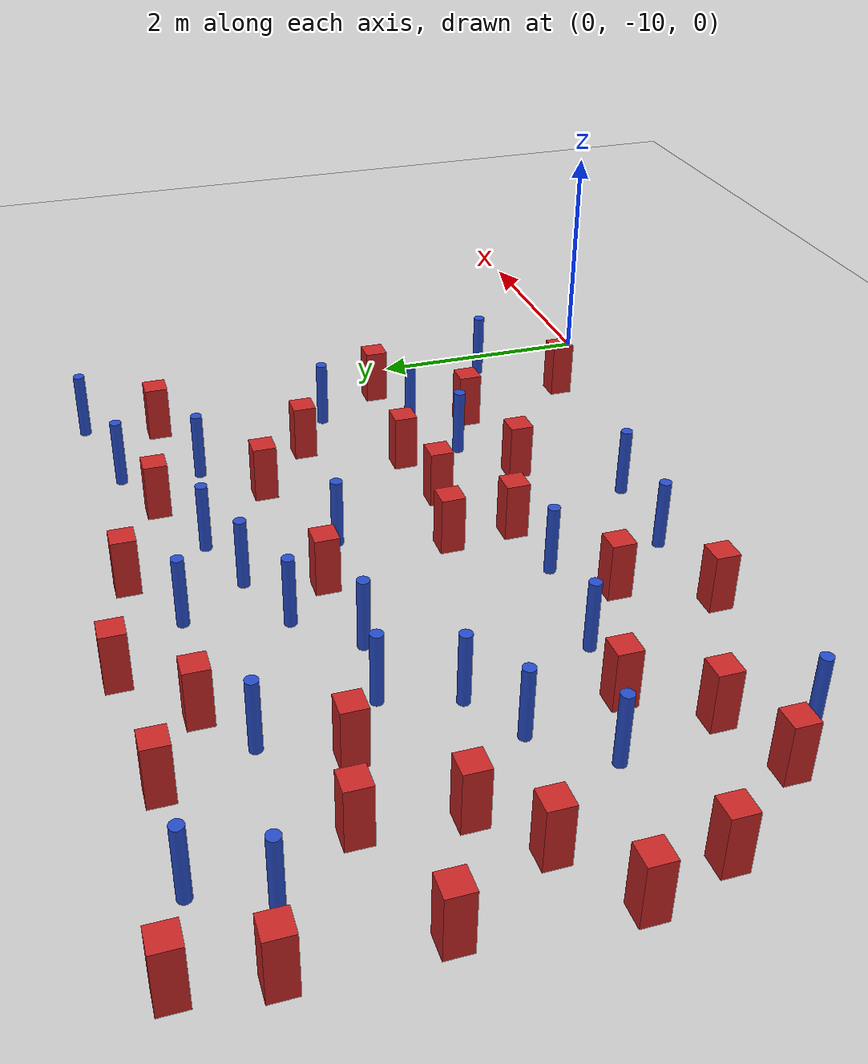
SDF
<sdf version="1.6">
 <world name="default">
  <model name="ground_plane">
   <static>1</static>
   <link name="link">
    <collision name="collision">
     <geometry><plane><normal>0 0 1</normal><size>100 100</size></plane></geometry>
     <surface><friction><ode><mu>100</mu><mu2>50</mu2></ode></friction></surface>
    </collision>
    <visual name="visual">
     <cast_shadows>0</cast_shadows>
     <geometry><plane><normal>0 0 1</normal><size>100 100</size></plane></geometry>
     <material>
      <ambient>1.0 1.0 1.0 1.0</ambient>
      <diffuse>0.8 0.8 0.8 1.0</diffuse>
      <specular>0.01 0.01 0.01 1.000000</specular>
     </material>
    </visual>
   </link>
  </model>
  <model name="square_post_obstacle3">
   <static>true</static>
   <pose>-0.493345622477 -7.72560742261 8.22691968438e-08 7.22125133819e-06 -7.54495500217e-07 2.29674213826e-05</pose>
   <link name="link">
    <pose>0 0 0.25 0 -0 0</pose>
    <inertial>
     <mass>100</mass>
     <inertia>
      <ixx>0.166667</ixx>
      <ixy>0</ixy>
      <ixz>0</ixz>
      <iyy>0.166667</iyy>
      <iyz>0</iyz>
      <izz>0.166667</izz>
     </inertia>
    </inertial>
    <collision name="collision"><geometry><box><size>.2 .2 .5</size></box></geometry></collision>
    <visual name="visual">
     <geometry><box><size>.2 .2 .5</size></box></geometry>
     <material>
      <script><name>Gazebo/Red</name><uri>file://media/materials/scripts/gazebo.material</uri></script>
     </material>
    </visual>
   </link>
  </model>
  <model name="square_post_obstacle17">
   <static>true</static>
   <pose>-6.70024138544 -4.7773195989 8.22691968438e-08 7.22125133819e-06 -7.54495500217e-07 2.29674213826e-05</pose>
   <link name="link">
    <pose>0 0 0.25 0 -0 0</pose>
    <inertial>
     <mass>100</mass>
     <inertia>
      <ixx>0.166667</ixx>
      <ixy>0</ixy>
      <ixz>0</ixz>
      <iyy>0.166667</iyy>
      <iyz>0</iyz>
      <izz>0.166667</izz>
     </inertia>
    </inertial>
    <collision name="collision"><geometry><box><size>.2 .2 .5</size></box></geometry></collision>
    <visual name="visual">
     <geometry><box><size>.2 .2 .5</size></box></geometry>
     <material>
      <script><name>Gazebo/Red</name><uri>file://media/materials/scripts/gazebo.material</uri></script>
     </material>
    </visual>
   </link>
  </model>
  <model name="pole_obstacle24">
   <static>true</static>
   <pose>-4.15992003659 -6.58074387573 2.88873142074e-08 -9.90536690842e-09 4.60219948965e-07 -1.20965994976e-07</pose>
   <link name="link">
    <pose>0 0 0.3 0 -0 0</pose>
    <inertial>
     <mass>1</mass>
     <inertia><ixx>0.145833</ixx><ixy>0</ixy><ixz>0</ixz><iyy>0.145833</iyy><iyz>0</iyz><izz>0.125</izz></inertia>
    </inertial>
    <collision name="collision">
     <geometry><cylinder><radius>0.05</radius><length>.6</length></cylinder></geometry>
    </collision>
    <visual name="visual">
     <geometry><cylinder><radius>0.05</radius><length>.6</length></cylinder></geometry>
     <material>
      <script><name>Gazebo/Blue</name><uri>file://media/materials/scripts/gazebo.material</uri></script>
     </material>
    </visual>
   </link>
  </model>
  <model name="square_post_obstacle27">
   <static>true</static>
   <pose>-2.95584262746 -5.01635917533 8.22691968438e-08 7.2212513382e-06 -7.54495500217e-07 2.29674213826e-05</pose>
   <link name="link">
    <pose>0 0 0.25 0 -0 0</pose>
    <inertial>
     <mass>100</mass>
     <inertia>
      <ixx>0.166667</ixx>
      <ixy>0</ixy>
      <ixz>0</ixz>
      <iyy>0.166667</iyy>
      <iyz>0</iyz>
      <izz>0.166667</izz>
     </inertia>
    </inertial>
    <collision name="collision"><geometry><box><size>.2 .2 .5</size></box></geometry></collision>
    <visual name="visual">
     <geometry><box><size>.2 .2 .5</size></box></geometry>
     <material>
      <script><name>Gazebo/Red</name><uri>file://media/materials/scripts/gazebo.material</uri></script>
     </material>
    </visual>
   </link>
  </model>
  <model name="pole_obstacle46">
   <static>true</static>
   <pose>-3.51646716942 -5.35829615018 2.88873142074e-08 -9.90536689859e-09 4.60219948989e-07 -1.20965994961e-07</pose>
   <link name="link">
    <pose>0 0 0.3 0 -0 0</pose>
    <inertial>
     <mass>1</mass>
     <inertia><ixx>0.145833</ixx><ixy>0</ixy><ixz>0</ixz><iyy>0.145833</iyy><iyz>0</iyz><izz>0.125</izz></inertia>
    </inertial>
    <collision name="collision">
     <geometry><cylinder><radius>0.05</radius><length>.6</length></cylinder></geometry>
    </collision>
    <visual name="visual">
     <geometry><cylinder><radius>0.05</radius><length>.6</length></cylinder></geometry>
     <material>
      <script><name>Gazebo/Blue</name><uri>file://media/materials/scripts/gazebo.material</uri></script>
     </material>
    </visual>
   </link>
  </model>
  <model name="pole_obstacle49">
   <static>true</static>
   <pose>-0.845034352433 -7.11770903729 2.88873142074e-08 -9.90536689661e-09 4.60219948993e-07 -1.20965994957e-07</pose>
   <link name="link">
    <pose>0 0 0.3 0 -0 0</pose>
    <inertial>
     <mass>1</mass>
     <inertia><ixx>0.145833</ixx><ixy>0</ixy><ixz>0</ixz><iyy>0.145833</iyy><iyz>0</iyz><izz>0.125</izz></inertia>
    </inertial>
    <collision name="collision">
     <geometry><cylinder><radius>0.05</radius><length>.6</length></cylinder></geometry>
    </collision>
    <visual name="visual">
     <geometry><cylinder><radius>0.05</radius><length>.6</length></cylinder></geometry>
     <material>
      <script><name>Gazebo/Blue</name><uri>file://media/materials/scripts/gazebo.material</uri></script>
     </material>
    </visual>
   </link>
  </model>
  <model name="pole_obstacle53">
   <static>true</static>
   <pose>-6.28925711133 -5.46033291262 2.88873142074e-08 -9.90536690842e-09 4.60219948965e-07 -1.20965994976e-07</pose>
   <link name="link">
    <pose>0 0 0.3 0 -0 0</pose>
    <inertial>
     <mass>1</mass>
     <inertia><ixx>0.145833</ixx><ixy>0</ixy><ixz>0</ixz><iyy>0.145833</iyy><iyz>0</iyz><izz>0.125</izz></inertia>
    </inertial>
    <collision name="collision">
     <geometry><cylinder><radius>0.05</radius><length>.6</length></cylinder></geometry>
    </collision>
    <visual name="visual">
     <geometry><cylinder><radius>0.05</radius><length>.6</length></cylinder></geometry>
     <material>
      <script><name>Gazebo/Blue</name><uri>file://media/materials/scripts/gazebo.material</uri></script>
     </material>
    </visual>
   </link>
  </model>
  <model name="square_post_obstacle42">
   <static>true</static>
   <pose>-5.97188376322 -6.75187943986 8.22691968438e-08 7.22125133819e-06 -7.54495500217e-07 2.29674213826e-05</pose>
   <link name="link">
    <pose>0 0 0.25 0 -0 0</pose>
    <inertial>
     <mass>100</mass>
     <inertia>
      <ixx>0.166667</ixx>
      <ixy>0</ixy>
      <ixz>0</ixz>
      <iyy>0.166667</iyy>
      <iyz>0</iyz>
      <izz>0.166667</izz>
     </inertia>
    </inertial>
    <collision name="collision"><geometry><box><size>.2 .2 .5</size></box></geometry></collision>
    <visual name="visual">
     <geometry><box><size>.2 .2 .5</size></box></geometry>
     <material>
      <script><name>Gazebo/Red</name><uri>file://media/materials/scripts/gazebo.material</uri></script>
     </material>
    </visual>
   </link>
  </model>
  <model name="square_post_obstacle47">
   <static>true</static>
   <pose>-2.2233526803 -8.53265162642 8.22691968438e-08 7.22125133819e-06 -7.54495500217e-07 2.29674213826e-05</pose>
   <link name="link">
    <pose>0 0 0.25 0 -0 0</pose>
    <inertial>
     <mass>100</mass>
     <inertia>
      <ixx>0.166667</ixx>
      <ixy>0</ixy>
      <ixz>0</ixz>
      <iyy>0.166667</iyy>
      <iyz>0</iyz>
      <izz>0.166667</izz>
     </inertia>
    </inertial>
    <collision name="collision"><geometry><box><size>.2 .2 .5</size></box></geometry></collision>
    <visual name="visual">
     <geometry><box><size>.2 .2 .5</size></box></geometry>
     <material>
      <script><name>Gazebo/Red</name><uri>file://media/materials/scripts/gazebo.material</uri></script>
     </material>
    </visual>
   </link>
  </model>
  <model name="pole_obstacle66">
   <static>true</static>
   <pose>-4.97730518468 -5.60602980783 2.88873142074e-08 -9.90536690842e-09 4.60219948965e-07 -1.20965994976e-07</pose>
   <link name="link">
    <pose>0 0 0.3 0 -0 0</pose>
    <inertial>
     <mass>1</mass>
     <inertia><ixx>0.145833</ixx><ixy>0</ixy><ixz>0</ixz><iyy>0.145833</iyy><iyz>0</iyz><izz>0.125</izz></inertia>
    </inertial>
    <collision name="collision">
     <geometry><cylinder><radius>0.05</radius><length>.6</length></cylinder></geometry>
    </collision>
    <visual name="visual">
     <geometry><cylinder><radius>0.05</radius><length>.6</length></cylinder></geometry>
     <material>
      <script><name>Gazebo/Blue</name><uri>file://media/materials/scripts/gazebo.material</uri></script>
     </material>
    </visual>
   </link>
  </model>
  <model name="pole_obstacle68">
   <static>true</static>
   <pose>-5.79321202497 -7.85407905585 2.88873142074e-08 -9.90536690842e-09 4.60219948965e-07 -1.20965994976e-07</pose>
   <link name="link">
    <pose>0 0 0.3 0 -0 0</pose>
    <inertial>
     <mass>1</mass>
     <inertia><ixx>0.145833</ixx><ixy>0</ixy><ixz>0</ixz><iyy>0.145833</iyy><iyz>0</iyz><izz>0.125</izz></inertia>
    </inertial>
    <collision name="collision">
     <geometry><cylinder><radius>0.05</radius><length>.6</length></cylinder></geometry>
    </collision>
    <visual name="visual">
     <geometry><cylinder><radius>0.05</radius><length>.6</length></cylinder></geometry>
     <material>
      <script><name>Gazebo/Blue</name><uri>file://media/materials/scripts/gazebo.material</uri></script>
     </material>
    </visual>
   </link>
  </model>
  <model name="pole_obstacle75">
   <static>true</static>
   <pose>-3.61009110257 -9.23267757967 2.88873142074e-08 -9.9053668994e-09 4.60219948987e-07 -1.20965994963e-07</pose>
   <link name="link">
    <pose>0 0 0.3 0 -0 0</pose>
    <inertial>
     <mass>1</mass>
     <inertia><ixx>0.145833</ixx><ixy>0</ixy><ixz>0</ixz><iyy>0.145833</iyy><iyz>0</iyz><izz>0.125</izz></inertia>
    </inertial>
    <collision name="collision">
     <geometry><cylinder><radius>0.05</radius><length>.6</length></cylinder></geometry>
    </collision>
    <visual name="visual">
     <geometry><cylinder><radius>0.05</radius><length>.6</length></cylinder></geometry>
     <material>
      <script><name>Gazebo/Blue</name><uri>file://media/materials/scripts/gazebo.material</uri></script>
     </material>
    </visual>
   </link>
  </model>
  <model name="pole_obstacle76">
   <static>true</static>
   <pose>-1.37994424659 -5.16311437465 2.88873142074e-08 -9.90536689852e-09 4.60219948989e-07 -1.2096599496e-07</pose>
   <link name="link">
    <pose>0 0 0.3 0 -0 0</pose>
    <inertial>
     <mass>1</mass>
     <inertia><ixx>0.145833</ixx><ixy>0</ixy><ixz>0</ixz><iyy>0.145833</iyy><iyz>0</iyz><izz>0.125</izz></inertia>
    </inertial>
    <collision name="collision">
     <geometry><cylinder><radius>0.05</radius><length>.6</length></cylinder></geometry>
    </collision>
    <visual name="visual">
     <geometry><cylinder><radius>0.05</radius><length>.6</length></cylinder></geometry>
     <material>
      <script><name>Gazebo/Blue</name><uri>file://media/materials/scripts/gazebo.material</uri></script>
     </material>
    </visual>
   </link>
  </model>
  <model name="square_post_obstacle67">
   <static>true</static>
   <pose>-6.38916918772 -7.11746175121 8.22691968438e-08 7.2212513382e-06 -7.54495500217e-07 2.29674213826e-05</pose>
   <link name="link">
    <pose>0 0 0.25 0 -0 0</pose>
    <inertial>
     <mass>100</mass>
     <inertia>
      <ixx>0.166667</ixx>
      <ixy>0</ixy>
      <ixz>0</ixz>
      <iyy>0.166667</iyy>
      <iyz>0</iyz>
      <izz>0.166667</izz>
     </inertia>
    </inertial>
    <collision name="collision"><geometry><box><size>.2 .2 .5</size></box></geometry></collision>
    <visual name="visual">
     <geometry><box><size>.2 .2 .5</size></box></geometry>
     <material>
      <script><name>Gazebo/Red</name><uri>file://media/materials/scripts/gazebo.material</uri></script>
     </material>
    </visual>
   </link>
  </model>
  <model name="pole_obstacle83">
   <static>true</static>
   <pose>-2.59215975054 -5.6934091363 2.88873142074e-08 -9.90536689859e-09 4.60219948989e-07 -1.20965994961e-07</pose>
   <link name="link">
    <pose>0 0 0.3 0 -0 0</pose>
    <inertial>
     <mass>1</mass>
     <inertia><ixx>0.145833</ixx><ixy>0</ixy><ixz>0</ixz><iyy>0.145833</iyy><iyz>0</iyz><izz>0.125</izz></inertia>
    </inertial>
    <collision name="collision">
     <geometry><cylinder><radius>0.05</radius><length>.6</length></cylinder></geometry>
    </collision>
    <visual name="visual">
     <geometry><cylinder><radius>0.05</radius><length>.6</length></cylinder></geometry>
     <material>
      <script><name>Gazebo/Blue</name><uri>file://media/materials/scripts/gazebo.material</uri></script>
     </material>
    </visual>
   </link>
  </model>
  <model name="pole_obstacle84">
   <static>true</static>
   <pose>-1.72093641902 -8.16516331236 2.88873142074e-08 -9.90536690474e-09 4.60219948974e-07 -1.2096599497e-07</pose>
   <link name="link">
    <pose>0 0 0.3 0 -0 0</pose>
    <inertial>
     <mass>1</mass>
     <inertia><ixx>0.145833</ixx><ixy>0</ixy><ixz>0</ixz><iyy>0.145833</iyy><iyz>0</iyz><izz>0.125</izz></inertia>
    </inertial>
    <collision name="collision">
     <geometry><cylinder><radius>0.05</radius><length>.6</length></cylinder></geometry>
    </collision>
    <visual name="visual">
     <geometry><cylinder><radius>0.05</radius><length>.6</length></cylinder></geometry>
     <material>
      <script><name>Gazebo/Blue</name><uri>file://media/materials/scripts/gazebo.material</uri></script>
     </material>
    </visual>
   </link>
  </model>
  <model name="square_post_obstacle76">
   <static>true</static>
   <pose>-6.80618920076 -6.35029914119 8.22691968438e-08 7.22125133819e-06 -7.54495500217e-07 2.29674213826e-05</pose>
   <link name="link">
    <pose>0 0 0.25 0 -0 0</pose>
    <inertial>
     <mass>100</mass>
     <inertia>
      <ixx>0.166667</ixx>
      <ixy>0</ixy>
      <ixz>0</ixz>
      <iyy>0.166667</iyy>
      <iyz>0</iyz>
      <izz>0.166667</izz>
     </inertia>
    </inertial>
    <collision name="collision"><geometry><box><size>.2 .2 .5</size></box></geometry></collision>
    <visual name="visual">
     <geometry><box><size>.2 .2 .5</size></box></geometry>
     <material>
      <script><name>Gazebo/Red</name><uri>file://media/materials/scripts/gazebo.material</uri></script>
     </material>
    </visual>
   </link>
  </model>
  <model name="square_post_obstacle80">
   <static>true</static>
   <pose>-5.89989526229 -6.0331485318 8.22691968438e-08 7.22125133819e-06 -7.54495500217e-07 2.29674213826e-05</pose>
   <link name="link">
    <pose>0 0 0.25 0 -0 0</pose>
    <inertial>
     <mass>100</mass>
     <inertia>
      <ixx>0.166667</ixx>
      <ixy>0</ixy>
      <ixz>0</ixz>
      <iyy>0.166667</iyy>
      <iyz>0</iyz>
      <izz>0.166667</izz>
     </inertia>
    </inertial>
    <collision name="collision"><geometry><box><size>.2 .2 .5</size></box></geometry></collision>
    <visual name="visual">
     <geometry><box><size>.2 .2 .5</size></box></geometry>
     <material>
      <script><name>Gazebo/Red</name><uri>file://media/materials/scripts/gazebo.material</uri></script>
     </material>
    </visual>
   </link>
  </model>
  <model name="square_post_obstacle82">
   <static>true</static>
   <pose>-1.3494134234 -6.80995264339 8.22691968438e-08 7.2212513382e-06 -7.54495500217e-07 2.29674213826e-05</pose>
   <link name="link">
    <pose>0 0 0.25 0 -0 0</pose>
    <inertial>
     <mass>100</mass>
     <inertia>
      <ixx>0.166667</ixx>
      <ixy>0</ixy>
      <ixz>0</ixz>
      <iyy>0.166667</iyy>
      <iyz>0</iyz>
      <izz>0.166667</izz>
     </inertia>
    </inertial>
    <collision name="collision"><geometry><box><size>.2 .2 .5</size></box></geometry></collision>
    <visual name="visual">
     <geometry><box><size>.2 .2 .5</size></box></geometry>
     <material>
      <script><name>Gazebo/Red</name><uri>file://media/materials/scripts/gazebo.material</uri></script>
     </material>
    </visual>
   </link>
  </model>
  <model name="square_post_obstacle83">
   <static>true</static>
   <pose>-6.74747124353 -8.10673178946 8.22691968438e-08 7.22125133819e-06 -7.54495500217e-07 2.29674213826e-05</pose>
   <link name="link">
    <pose>0 0 0.25 0 -0 0</pose>
    <inertial>
     <mass>100</mass>
     <inertia>
      <ixx>0.166667</ixx>
      <ixy>0</ixy>
      <ixz>0</ixz>
      <iyy>0.166667</iyy>
      <iyz>0</iyz>
      <izz>0.166667</izz>
     </inertia>
    </inertial>
    <collision name="collision"><geometry><box><size>.2 .2 .5</size></box></geometry></collision>
    <visual name="visual">
     <geometry><box><size>.2 .2 .5</size></box></geometry>
     <material>
      <script><name>Gazebo/Red</name><uri>file://media/materials/scripts/gazebo.material</uri></script>
     </material>
    </visual>
   </link>
  </model>
  <model name="pole_obstacle93">
   <static>true</static>
   <pose>-1.46219772768 -5.84406266683 2.88873142074e-08 -9.90536689852e-09 4.60219948989e-07 -1.2096599496e-07</pose>
   <link name="link">
    <pose>0 0 0.3 0 -0 0</pose>
    <inertial>
     <mass>1</mass>
     <inertia><ixx>0.145833</ixx><ixy>0</ixy><ixz>0</ixz><iyy>0.145833</iyy><iyz>0</iyz><izz>0.125</izz></inertia>
    </inertial>
    <collision name="collision">
     <geometry><cylinder><radius>0.05</radius><length>.6</length></cylinder></geometry>
    </collision>
    <visual name="visual">
     <geometry><cylinder><radius>0.05</radius><length>.6</length></cylinder></geometry>
     <material>
      <script><name>Gazebo/Blue</name><uri>file://media/materials/scripts/gazebo.material</uri></script>
     </material>
    </visual>
   </link>
  </model>
  <model name="pole_obstacle94">
   <static>true</static>
   <pose>-3.16514771165 -5.88949380818 2.88873142074e-08 -9.90536689859e-09 4.60219948989e-07 -1.20965994961e-07</pose>
   <link name="link">
    <pose>0 0 0.3 0 -0 0</pose>
    <inertial>
     <mass>1</mass>
     <inertia><ixx>0.145833</ixx><ixy>0</ixy><ixz>0</ixz><iyy>0.145833</iyy><iyz>0</iyz><izz>0.125</izz></inertia>
    </inertial>
    <collision name="collision">
     <geometry><cylinder><radius>0.05</radius><length>.6</length></cylinder></geometry>
    </collision>
    <visual name="visual">
     <geometry><cylinder><radius>0.05</radius><length>.6</length></cylinder></geometry>
     <material>
      <script><name>Gazebo/Blue</name><uri>file://media/materials/scripts/gazebo.material</uri></script>
     </material>
    </visual>
   </link>
  </model>
  <model name="square_post_obstacle97">
   <static>true</static>
   <pose>-1.77646345106 -7.62012668404 8.22691968438e-08 7.2212513382e-06 -7.54495500217e-07 2.29674213826e-05</pose>
   <link name="link">
    <pose>0 0 0.25 0 -0 0</pose>
    <inertial>
     <mass>100</mass>
     <inertia>
      <ixx>0.166667</ixx>
      <ixy>0</ixy>
      <ixz>0</ixz>
      <iyy>0.166667</iyy>
      <iyz>0</iyz>
      <izz>0.166667</izz>
     </inertia>
    </inertial>
    <collision name="collision"><geometry><box><size>.2 .2 .5</size></box></geometry></collision>
    <visual name="visual">
     <geometry><box><size>.2 .2 .5</size></box></geometry>
     <material>
      <script><name>Gazebo/Red</name><uri>file://media/materials/scripts/gazebo.material</uri></script>
     </material>
    </visual>
   </link>
  </model>
  <model name="square_post_obstacle99">
   <static>true</static>
   <pose>-3.12521516252 -7.59323868157 8.22691968438e-08 7.2212513382e-06 -7.54495500217e-07 2.29674213826e-05</pose>
   <link name="link">
    <pose>0 0 0.25 0 -0 0</pose>
    <inertial>
     <mass>100</mass>
     <inertia>
      <ixx>0.166667</ixx>
      <ixy>0</ixy>
      <ixz>0</ixz>
      <iyy>0.166667</iyy>
      <iyz>0</iyz>
      <izz>0.166667</izz>
     </inertia>
    </inertial>
    <collision name="collision"><geometry><box><size>.2 .2 .5</size></box></geometry></collision>
    <visual name="visual">
     <geometry><box><size>.2 .2 .5</size></box></geometry>
     <material>
      <script><name>Gazebo/Red</name><uri>file://media/materials/scripts/gazebo.material</uri></script>
     </material>
    </visual>
   </link>
  </model>
  <model name="square_post_obstacle105">
   <static>true</static>
   <pose>-1.92635302986 -6.32361667722 8.22691968438e-08 7.2212513382e-06 -7.54495500217e-07 2.29674213826e-05</pose>
   <link name="link">
    <pose>0 0 0.25 0 -0 0</pose>
    <inertial>
     <mass>100</mass>
     <inertia>
      <ixx>0.166667</ixx>
      <ixy>0</ixy>
      <ixz>0</ixz>
      <iyy>0.166667</iyy>
      <iyz>0</iyz>
      <izz>0.166667</izz>
     </inertia>
    </inertial>
    <collision name="collision"><geometry><box><size>.2 .2 .5</size></box></geometry></collision>
    <visual name="visual">
     <geometry><box><size>.2 .2 .5</size></box></geometry>
     <material>
      <script><name>Gazebo/Red</name><uri>file://media/materials/scripts/gazebo.material</uri></script>
     </material>
    </visual>
   </link>
  </model>
  <model name="square_post_obstacle109">
   <static>true</static>
   <pose>-6.92689783256 -7.4891029306 8.22691968438e-08 7.2212513382e-06 -7.54495500217e-07 2.29674213826e-05</pose>
   <link name="link">
    <pose>0 0 0.25 0 -0 0</pose>
    <inertial>
     <mass>100</mass>
     <inertia>
      <ixx>0.166667</ixx>
      <ixy>0</ixy>
      <ixz>0</ixz>
      <iyy>0.166667</iyy>
      <iyz>0</iyz>
      <izz>0.166667</izz>
     </inertia>
    </inertial>
    <collision name="collision"><geometry><box><size>.2 .2 .5</size></box></geometry></collision>
    <visual name="visual">
     <geometry><box><size>.2 .2 .5</size></box></geometry>
     <material>
      <script><name>Gazebo/Red</name><uri>file://media/materials/scripts/gazebo.material</uri></script>
     </material>
    </visual>
   </link>
  </model>
  <model name="square_post_obstacle110">
   <static>true</static>
   <pose>-0.615982910293 -5.59972403722 8.22691968438e-08 7.22125133819e-06 -7.54495500217e-07 2.29674213826e-05</pose>
   <link name="link">
    <pose>0 0 0.25 0 -0 0</pose>
    <inertial>
     <mass>100</mass>
     <inertia>
      <ixx>0.166667</ixx>
      <ixy>0</ixy>
      <ixz>0</ixz>
      <iyy>0.166667</iyy>
      <iyz>0</iyz>
      <izz>0.166667</izz>
     </inertia>
    </inertial>
    <collision name="collision"><geometry><box><size>.2 .2 .5</size></box></geometry></collision>
    <visual name="visual">
     <geometry><box><size>.2 .2 .5</size></box></geometry>
     <material>
      <script><name>Gazebo/Red</name><uri>file://media/materials/scripts/gazebo.material</uri></script>
     </material>
    </visual>
   </link>
  </model>
  <model name="square_post_obstacle114">
   <static>true</static>
   <pose>-3.08795373628 -8.15774296068 8.22691968438e-08 7.22125133819e-06 -7.54495500217e-07 2.29674213826e-05</pose>
   <link name="link">
    <pose>0 0 0.25 0 -0 0</pose>
    <inertial>
     <mass>100</mass>
     <inertia>
      <ixx>0.166667</ixx>
      <ixy>0</ixy>
      <ixz>0</ixz>
      <iyy>0.166667</iyy>
      <iyz>0</iyz>
      <izz>0.166667</izz>
     </inertia>
    </inertial>
    <collision name="collision"><geometry><box><size>.2 .2 .5</size></box></geometry></collision>
    <visual name="visual">
     <geometry><box><size>.2 .2 .5</size></box></geometry>
     <material>
      <script><name>Gazebo/Red</name><uri>file://media/materials/scripts/gazebo.material</uri></script>
     </material>
    </visual>
   </link>
  </model>
  <model name="pole_obstacle117">
   <static>true</static>
   <pose>-2.83641801413 -6.73298251179 2.88873142074e-08 -9.90536689859e-09 4.60219948989e-07 -1.20965994961e-07</pose>
   <link name="link">
    <pose>0 0 0.3 0 -0 0</pose>
    <inertial>
     <mass>1</mass>
     <inertia><ixx>0.145833</ixx><ixy>0</ixy><ixz>0</ixz><iyy>0.145833</iyy><iyz>0</iyz><izz>0.125</izz></inertia>
    </inertial>
    <collision name="collision">
     <geometry><cylinder><radius>0.05</radius><length>.6</length></cylinder></geometry>
    </collision>
    <visual name="visual">
     <geometry><cylinder><radius>0.05</radius><length>.6</length></cylinder></geometry>
     <material>
      <script><name>Gazebo/Blue</name><uri>file://media/materials/scripts/gazebo.material</uri></script>
     </material>
    </visual>
   </link>
  </model>
  <model name="square_post_obstacle119">
   <static>true</static>
   <pose>-5.20755742617 -4.93624083739 8.22691968438e-08 7.22125133819e-06 -7.54495500217e-07 2.29674213826e-05</pose>
   <link name="link">
    <pose>0 0 0.25 0 -0 0</pose>
    <inertial>
     <mass>100</mass>
     <inertia>
      <ixx>0.166667</ixx>
      <ixy>0</ixy>
      <ixz>0</ixz>
      <iyy>0.166667</iyy>
      <iyz>0</iyz>
      <izz>0.166667</izz>
     </inertia>
    </inertial>
    <collision name="collision"><geometry><box><size>.2 .2 .5</size></box></geometry></collision>
    <visual name="visual">
     <geometry><box><size>.2 .2 .5</size></box></geometry>
     <material>
      <script><name>Gazebo/Red</name><uri>file://media/materials/scripts/gazebo.material</uri></script>
     </material>
    </visual>
   </link>
  </model>
  <model name="pole_obstacle124">
   <static>true</static>
   <pose>-2.7826654849 -9.29209129826 2.88873142074e-08 -9.90536692318e-09 4.6021994893e-07 -1.20965994988e-07</pose>
   <link name="link">
    <pose>0 0 0.3 0 -0 0</pose>
    <inertial>
     <mass>1</mass>
     <inertia><ixx>0.145833</ixx><ixy>0</ixy><ixz>0</ixz><iyy>0.145833</iyy><iyz>0</iyz><izz>0.125</izz></inertia>
    </inertial>
    <collision name="collision">
     <geometry><cylinder><radius>0.05</radius><length>.6</length></cylinder></geometry>
    </collision>
    <visual name="visual">
     <geometry><cylinder><radius>0.05</radius><length>.6</length></cylinder></geometry>
     <material>
      <script><name>Gazebo/Blue</name><uri>file://media/materials/scripts/gazebo.material</uri></script>
     </material>
    </visual>
   </link>
  </model>
  <model name="square_post_obstacle123">
   <static>true</static>
   <pose>-1.94584432946 -5.40111542861 8.22691968438e-08 7.2212513382e-06 -7.54495500217e-07 2.29674213826e-05</pose>
   <link name="link">
    <pose>0 0 0.25 0 -0 0</pose>
    <inertial>
     <mass>100</mass>
     <inertia>
      <ixx>0.166667</ixx>
      <ixy>0</ixy>
      <ixz>0</ixz>
      <iyy>0.166667</iyy>
      <iyz>0</iyz>
      <izz>0.166667</izz>
     </inertia>
    </inertial>
    <collision name="collision"><geometry><box><size>.2 .2 .5</size></box></geometry></collision>
    <visual name="visual">
     <geometry><box><size>.2 .2 .5</size></box></geometry>
     <material>
      <script><name>Gazebo/Red</name><uri>file://media/materials/scripts/gazebo.material</uri></script>
     </material>
    </visual>
   </link>
  </model>
  <model name="square_post_obstacle125">
   <static>true</static>
   <pose>-2.43214375384 -7.73103566053 8.22691968438e-08 7.22125133819e-06 -7.54495500217e-07 2.29674213826e-05</pose>
   <link name="link">
    <pose>0 0 0.25 0 -0 0</pose>
    <inertial>
     <mass>100</mass>
     <inertia>
      <ixx>0.166667</ixx>
      <ixy>0</ixy>
      <ixz>0</ixz>
      <iyy>0.166667</iyy>
      <iyz>0</iyz>
      <izz>0.166667</izz>
     </inertia>
    </inertial>
    <collision name="collision"><geometry><box><size>.2 .2 .5</size></box></geometry></collision>
    <visual name="visual">
     <geometry><box><size>.2 .2 .5</size></box></geometry>
     <material>
      <script><name>Gazebo/Red</name><uri>file://media/materials/scripts/gazebo.material</uri></script>
     </material>
    </visual>
   </link>
  </model>
  <model name="square_post_obstacle128">
   <static>true</static>
   <pose>-4.05019841309 -4.80927381721 8.22691968438e-08 7.2212513382e-06 -7.54495500217e-07 2.29674213826e-05</pose>
   <link name="link">
    <pose>0 0 0.25 0 -0 0</pose>
    <inertial>
     <mass>100</mass>
     <inertia>
      <ixx>0.166667</ixx>
      <ixy>0</ixy>
      <ixz>0</ixz>
      <iyy>0.166667</iyy>
      <iyz>0</iyz>
      <izz>0.166667</izz>
     </inertia>
    </inertial>
    <collision name="collision"><geometry><box><size>.2 .2 .5</size></box></geometry></collision>
    <visual name="visual">
     <geometry><box><size>.2 .2 .5</size></box></geometry>
     <material>
      <script><name>Gazebo/Red</name><uri>file://media/materials/scripts/gazebo.material</uri></script>
     </material>
    </visual>
   </link>
  </model>
  <model name="pole_obstacle133">
   <static>true</static>
   <pose>-4.93526808167 -7.07778937771 2.88873142074e-08 -9.90536690842e-09 4.60219948965e-07 -1.20965994976e-07</pose>
   <link name="link">
    <pose>0 0 0.3 0 -0 0</pose>
    <inertial>
     <mass>1</mass>
     <inertia><ixx>0.145833</ixx><ixy>0</ixy><ixz>0</ixz><iyy>0.145833</iyy><iyz>0</iyz><izz>0.125</izz></inertia>
    </inertial>
    <collision name="collision">
     <geometry><cylinder><radius>0.05</radius><length>.6</length></cylinder></geometry>
    </collision>
    <visual name="visual">
     <geometry><cylinder><radius>0.05</radius><length>.6</length></cylinder></geometry>
     <material>
      <script><name>Gazebo/Blue</name><uri>file://media/materials/scripts/gazebo.material</uri></script>
     </material>
    </visual>
   </link>
  </model>
  <model name="pole_obstacle136">
   <static>true</static>
   <pose>-5.38070247253 -7.3535587467 2.88873142074e-08 -9.90536690842e-09 4.60219948965e-07 -1.20965994976e-07</pose>
   <link name="link">
    <pose>0 0 0.3 0 -0 0</pose>
    <inertial>
     <mass>1</mass>
     <inertia><ixx>0.145833</ixx><ixy>0</ixy><ixz>0</ixz><iyy>0.145833</iyy><iyz>0</iyz><izz>0.125</izz></inertia>
    </inertial>
    <collision name="collision">
     <geometry><cylinder><radius>0.05</radius><length>.6</length></cylinder></geometry>
    </collision>
    <visual name="visual">
     <geometry><cylinder><radius>0.05</radius><length>.6</length></cylinder></geometry>
     <material>
      <script><name>Gazebo/Blue</name><uri>file://media/materials/scripts/gazebo.material</uri></script>
     </material>
    </visual>
   </link>
  </model>
  <model name="square_post_obstacle137">
   <static>true</static>
   <pose>-6.19347424817 -8.86249543432 8.22691968438e-08 7.22125133819e-06 -7.54495500217e-07 2.29674213826e-05</pose>
   <link name="link">
    <pose>0 0 0.25 0 -0 0</pose>
    <inertial>
     <mass>100</mass>
     <inertia>
      <ixx>0.166667</ixx>
      <ixy>0</ixy>
      <ixz>0</ixz>
      <iyy>0.166667</iyy>
      <iyz>0</iyz>
      <izz>0.166667</izz>
     </inertia>
    </inertial>
    <collision name="collision"><geometry><box><size>.2 .2 .5</size></box></geometry></collision>
    <visual name="visual">
     <geometry><box><size>.2 .2 .5</size></box></geometry>
     <material>
      <script><name>Gazebo/Red</name><uri>file://media/materials/scripts/gazebo.material</uri></script>
     </material>
    </visual>
   </link>
  </model>
  <model name="pole_obstacle145">
   <static>true</static>
   <pose>-4.76062360588 -6.50343125177 2.88873142074e-08 -9.90536690842e-09 4.60219948965e-07 -1.20965994976e-07</pose>
   <link name="link">
    <pose>0 0 0.3 0 -0 0</pose>
    <inertial>
     <mass>1</mass>
     <inertia><ixx>0.145833</ixx><ixy>0</ixy><ixz>0</ixz><iyy>0.145833</iyy><iyz>0</iyz><izz>0.125</izz></inertia>
    </inertial>
    <collision name="collision">
     <geometry><cylinder><radius>0.05</radius><length>.6</length></cylinder></geometry>
    </collision>
    <visual name="visual">
     <geometry><cylinder><radius>0.05</radius><length>.6</length></cylinder></geometry>
     <material>
      <script><name>Gazebo/Blue</name><uri>file://media/materials/scripts/gazebo.material</uri></script>
     </material>
    </visual>
   </link>
  </model>
  <model name="pole_obstacle152">
   <static>true</static>
   <pose>-0.314808685576 -8.86691754454 2.88873142074e-08 -9.90536691079e-09 4.6021994896e-07 -1.2096599498e-07</pose>
   <link name="link">
    <pose>0 0 0.3 0 -0 0</pose>
    <inertial>
     <mass>1</mass>
     <inertia><ixx>0.145833</ixx><ixy>0</ixy><ixz>0</ixz><iyy>0.145833</iyy><iyz>0</iyz><izz>0.125</izz></inertia>
    </inertial>
    <collision name="collision">
     <geometry><cylinder><radius>0.05</radius><length>.6</length></cylinder></geometry>
    </collision>
    <visual name="visual">
     <geometry><cylinder><radius>0.05</radius><length>.6</length></cylinder></geometry>
     <material>
      <script><name>Gazebo/Blue</name><uri>file://media/materials/scripts/gazebo.material</uri></script>
     </material>
    </visual>
   </link>
  </model>
  <model name="pole_obstacle154">
   <static>true</static>
   <pose>-3.68865184115 -8.24433548699 2.88873142074e-08 -9.90536692318e-09 4.6021994893e-07 -1.20965994988e-07</pose>
   <link name="link">
    <pose>0 0 0.3 0 -0 0</pose>
    <inertial>
     <mass>1</mass>
     <inertia><ixx>0.145833</ixx><ixy>0</ixy><ixz>0</ixz><iyy>0.145833</iyy><iyz>0</iyz><izz>0.125</izz></inertia>
    </inertial>
    <collision name="collision">
     <geometry><cylinder><radius>0.05</radius><length>.6</length></cylinder></geometry>
    </collision>
    <visual name="visual">
     <geometry><cylinder><radius>0.05</radius><length>.6</length></cylinder></geometry>
     <material>
      <script><name>Gazebo/Blue</name><uri>file://media/materials/scripts/gazebo.material</uri></script>
     </material>
    </visual>
   </link>
  </model>
  <model name="square_post_obstacle153">
   <static>true</static>
   <pose>-6.7923099011 -5.35641480796 8.22691968438e-08 7.2212513382e-06 -7.54495500217e-07 2.29674213826e-05</pose>
   <link name="link">
    <pose>0 0 0.25 0 -0 0</pose>
    <inertial>
     <mass>100</mass>
     <inertia>
      <ixx>0.166667</ixx>
      <ixy>0</ixy>
      <ixz>0</ixz>
      <iyy>0.166667</iyy>
      <iyz>0</iyz>
      <izz>0.166667</izz>
     </inertia>
    </inertial>
    <collision name="collision"><geometry><box><size>.2 .2 .5</size></box></geometry></collision>
    <visual name="visual">
     <geometry><box><size>.2 .2 .5</size></box></geometry>
     <material>
      <script><name>Gazebo/Red</name><uri>file://media/materials/scripts/gazebo.material</uri></script>
     </material>
    </visual>
   </link>
  </model>
  <model name="square_post_obstacle161">
   <static>true</static>
   <pose>-4.08563468089 -8.61553119433 8.22691968438e-08 7.22125133819e-06 -7.54495500217e-07 2.29674213826e-05</pose>
   <link name="link">
    <pose>0 0 0.25 0 -0 0</pose>
    <inertial>
     <mass>100</mass>
     <inertia>
      <ixx>0.166667</ixx>
      <ixy>0</ixy>
      <ixz>0</ixz>
      <iyy>0.166667</iyy>
      <iyz>0</iyz>
      <izz>0.166667</izz>
     </inertia>
    </inertial>
    <collision name="collision"><geometry><box><size>.2 .2 .5</size></box></geometry></collision>
    <visual name="visual">
     <geometry><box><size>.2 .2 .5</size></box></geometry>
     <material>
      <script><name>Gazebo/Red</name><uri>file://media/materials/scripts/gazebo.material</uri></script>
     </material>
    </visual>
   </link>
  </model>
  <model name="square_post_obstacle163">
   <static>true</static>
   <pose>-3.37329209565 -6.49374620089 8.22691968438e-08 7.2212513382e-06 -7.54495500217e-07 2.29674213826e-05</pose>
   <link name="link">
    <pose>0 0 0.25 0 -0 0</pose>
    <inertial>
     <mass>100</mass>
     <inertia>
      <ixx>0.166667</ixx>
      <ixy>0</ixy>
      <ixz>0</ixz>
      <iyy>0.166667</iyy>
      <iyz>0</iyz>
      <izz>0.166667</izz>
     </inertia>
    </inertial>
    <collision name="collision"><geometry><box><size>.2 .2 .5</size></box></geometry></collision>
    <visual name="visual">
     <geometry><box><size>.2 .2 .5</size></box></geometry>
     <material>
      <script><name>Gazebo/Red</name><uri>file://media/materials/scripts/gazebo.material</uri></script>
     </material>
    </visual>
   </link>
  </model>
  <model name="pole_obstacle171">
   <static>true</static>
   <pose>-1.12503586365 -7.89299469476 2.88873142074e-08 -9.90536689852e-09 4.60219948989e-07 -1.2096599496e-07</pose>
   <link name="link">
    <pose>0 0 0.3 0 -0 0</pose>
    <inertial>
     <mass>1</mass>
     <inertia><ixx>0.145833</ixx><ixy>0</ixy><ixz>0</ixz><iyy>0.145833</iyy><iyz>0</iyz><izz>0.125</izz></inertia>
    </inertial>
    <collision name="collision">
     <geometry><cylinder><radius>0.05</radius><length>.6</length></cylinder></geometry>
    </collision>
    <visual name="visual">
     <geometry><cylinder><radius>0.05</radius><length>.6</length></cylinder></geometry>
     <material>
      <script><name>Gazebo/Blue</name><uri>file://media/materials/scripts/gazebo.material</uri></script>
     </material>
    </visual>
   </link>
  </model>
  <model name="square_post_obstacle173">
   <static>true</static>
   <pose>-4.58191394583 -5.29503535222 8.22691968438e-08 7.2212513382e-06 -7.54495500217e-07 2.29674213826e-05</pose>
   <link name="link">
    <pose>0 0 0.25 0 -0 0</pose>
    <inertial>
     <mass>100</mass>
     <inertia>
      <ixx>0.166667</ixx>
      <ixy>0</ixy>
      <ixz>0</ixz>
      <iyy>0.166667</iyy>
      <iyz>0</iyz>
      <izz>0.166667</izz>
     </inertia>
    </inertial>
    <collision name="collision"><geometry><box><size>.2 .2 .5</size></box></geometry></collision>
    <visual name="visual">
     <geometry><box><size>.2 .2 .5</size></box></geometry>
     <material>
      <script><name>Gazebo/Red</name><uri>file://media/materials/scripts/gazebo.material</uri></script>
     </material>
    </visual>
   </link>
  </model>
  <model name="square_post_obstacle179">
   <static>true</static>
   <pose>-4.4443314527 -9.28765737147 8.22691968438e-08 7.2212513382e-06 -7.54495500217e-07 2.29674213826e-05</pose>
   <link name="link">
    <pose>0 0 0.25 0 -0 0</pose>
    <inertial>
     <mass>100</mass>
     <inertia>
      <ixx>0.166667</ixx>
      <ixy>0</ixy>
      <ixz>0</ixz>
      <iyy>0.166667</iyy>
      <iyz>0</iyz>
      <izz>0.166667</izz>
     </inertia>
    </inertial>
    <collision name="collision"><geometry><box><size>.2 .2 .5</size></box></geometry></collision>
    <visual name="visual">
     <geometry><box><size>.2 .2 .5</size></box></geometry>
     <material>
      <script><name>Gazebo/Red</name><uri>file://media/materials/scripts/gazebo.material</uri></script>
     </material>
    </visual>
   </link>
  </model>
  <model name="pole_obstacle184">
   <static>true</static>
   <pose>-4.65673298702 -8.15084995246 2.88873142074e-08 -9.9053668967e-09 4.60219948993e-07 -1.20965994957e-07</pose>
   <link name="link">
    <pose>0 0 0.3 0 -0 0</pose>
    <inertial>
     <mass>1</mass>
     <inertia><ixx>0.145833</ixx><ixy>0</ixy><ixz>0</ixz><iyy>0.145833</iyy><iyz>0</iyz><izz>0.125</izz></inertia>
    </inertial>
    <collision name="collision">
     <geometry><cylinder><radius>0.05</radius><length>.6</length></cylinder></geometry>
    </collision>
    <visual name="visual">
     <geometry><cylinder><radius>0.05</radius><length>.6</length></cylinder></geometry>
     <material>
      <script><name>Gazebo/Blue</name><uri>file://media/materials/scripts/gazebo.material</uri></script>
     </material>
    </visual>
   </link>
  </model>
  <model name="square_post_obstacle186">
   <static>true</static>
   <pose>-5.23723590245 -8.11179590081 8.22691968438e-08 7.22125133819e-06 -7.54495500217e-07 2.29674213826e-05</pose>
   <link name="link">
    <pose>0 0 0.25 0 -0 0</pose>
    <inertial>
     <mass>100</mass>
     <inertia>
      <ixx>0.166667</ixx>
      <ixy>0</ixy>
      <ixz>0</ixz>
      <iyy>0.166667</iyy>
      <iyz>0</iyz>
      <izz>0.166667</izz>
     </inertia>
    </inertial>
    <collision name="collision"><geometry><box><size>.2 .2 .5</size></box></geometry></collision>
    <visual name="visual">
     <geometry><box><size>.2 .2 .5</size></box></geometry>
     <material>
      <script><name>Gazebo/Red</name><uri>file://media/materials/scripts/gazebo.material</uri></script>
     </material>
    </visual>
   </link>
  </model>
  <model name="square_post_obstacle202">
   <static>true</static>
   <pose>-0.882775991897 -9.49602783853 8.22691968438e-08 7.22125133819e-06 -7.54495500217e-07 2.29674213826e-05</pose>
   <link name="link">
    <pose>0 0 0.25 0 -0 0</pose>
    <inertial>
     <mass>100</mass>
     <inertia>
      <ixx>0.166667</ixx>
      <ixy>0</ixy>
      <ixz>0</ixz>
      <iyy>0.166667</iyy>
      <iyz>0</iyz>
      <izz>0.166667</izz>
     </inertia>
    </inertial>
    <collision name="collision"><geometry><box><size>.2 .2 .5</size></box></geometry></collision>
    <visual name="visual">
     <geometry><box><size>.2 .2 .5</size></box></geometry>
     <material>
      <script><name>Gazebo/Red</name><uri>file://media/materials/scripts/gazebo.material</uri></script>
     </material>
    </visual>
   </link>
  </model>
  <model name="square_post_obstacle209">
   <static>true</static>
   <pose>-5.62168731784 -8.6515694673 8.22691968438e-08 7.22125133819e-06 -7.54495500217e-07 2.29674213826e-05</pose>
   <link name="link">
    <pose>0 0 0.25 0 -0 0</pose>
    <inertial>
     <mass>100</mass>
     <inertia>
      <ixx>0.166667</ixx>
      <ixy>0</ixy>
      <ixz>0</ixz>
      <iyy>0.166667</iyy>
      <iyz>0</iyz>
      <izz>0.166667</izz>
     </inertia>
    </inertial>
    <collision name="collision"><geometry><box><size>.2 .2 .5</size></box></geometry></collision>
    <visual name="visual">
     <geometry><box><size>.2 .2 .5</size></box></geometry>
     <material>
      <script><name>Gazebo/Red</name><uri>file://media/materials/scripts/gazebo.material</uri></script>
     </material>
    </visual>
   </link>
  </model>
  <model name="square_post_obstacle212">
   <static>true</static>
   <pose>-1.21286806569 -8.42342382599 8.22691968438e-08 7.2212513382e-06 -7.54495500217e-07 2.29674213826e-05</pose>
   <link name="link">
    <pose>0 0 0.25 0 -0 0</pose>
    <inertial>
     <mass>100</mass>
     <inertia>
      <ixx>0.166667</ixx>
      <ixy>0</ixy>
      <ixz>0</ixz>
      <iyy>0.166667</iyy>
      <iyz>0</iyz>
      <izz>0.166667</izz>
     </inertia>
    </inertial>
    <collision name="collision"><geometry><box><size>.2 .2 .5</size></box></geometry></collision>
    <visual name="visual">
     <geometry><box><size>.2 .2 .5</size></box></geometry>
     <material>
      <script><name>Gazebo/Red</name><uri>file://media/materials/scripts/gazebo.material</uri></script>
     </material>
    </visual>
   </link>
  </model>
  <model name="square_post_obstacle223">
   <static>true</static>
   <pose>-5.24517296882 -6.18968664711 8.22691968438e-08 7.22125133819e-06 -7.54495500217e-07 2.29674213826e-05</pose>
   <link name="link">
    <pose>0 0 0.25 0 -0 0</pose>
    <inertial>
     <mass>100</mass>
     <inertia>
      <ixx>0.166667</ixx>
      <ixy>0</ixy>
      <ixz>0</ixz>
      <iyy>0.166667</iyy>
      <iyz>0</iyz>
      <izz>0.166667</izz>
     </inertia>
    </inertial>
    <collision name="collision"><geometry><box><size>.2 .2 .5</size></box></geometry></collision>
    <visual name="visual">
     <geometry><box><size>.2 .2 .5</size></box></geometry>
     <material>
      <script><name>Gazebo/Red</name><uri>file://media/materials/scripts/gazebo.material</uri></script>
     </material>
    </visual>
   </link>
  </model>
  <model name="pole_obstacle210">
   <static>true</static>
   <pose>-0.425385990867 -4.94397997959 2.88873142074e-08 -9.90536689555e-09 4.60219948996e-07 -1.20965994955e-07</pose>
   <link name="link">
    <pose>0 0 0.3 0 -0 0</pose>
    <inertial>
     <mass>1</mass>
     <inertia><ixx>0.145833</ixx><ixy>0</ixy><ixz>0</ixz><iyy>0.145833</iyy><iyz>0</iyz><izz>0.125</izz></inertia>
    </inertial>
    <collision name="collision">
     <geometry><cylinder><radius>0.05</radius><length>.6</length></cylinder></geometry>
    </collision>
    <visual name="visual">
     <geometry><cylinder><radius>0.05</radius><length>.6</length></cylinder></geometry>
     <material>
      <script><name>Gazebo/Blue</name><uri>file://media/materials/scripts/gazebo.material</uri></script>
     </material>
    </visual>
   </link>
  </model>
  <model name="pole_obstacle216">
   <static>true</static>
   <pose>-3.74258999087 -6.12981997959 2.88873142074e-08 -9.90536689859e-09 4.60219948989e-07 -1.20965994961e-07</pose>
   <link name="link">
    <pose>0 0 0.3 0 -0 0</pose>
    <inertial>
     <mass>1</mass>
     <inertia><ixx>0.145833</ixx><ixy>0</ixy><ixz>0</ixz><iyy>0.145833</iyy><iyz>0</iyz><izz>0.125</izz></inertia>
    </inertial>
    <collision name="collision">
     <geometry><cylinder><radius>0.05</radius><length>.6</length></cylinder></geometry>
    </collision>
    <visual name="visual">
     <geometry><cylinder><radius>0.05</radius><length>.6</length></cylinder></geometry>
     <material>
      <script><name>Gazebo/Blue</name><uri>file://media/materials/scripts/gazebo.material</uri></script>
     </material>
    </visual>
   </link>
  </model>
  <model name="pole_obstacle219">
   <static>true</static>
   <pose>-6.05722999087 -4.95653997959 2.88873142074e-08 -9.90536690842e-09 4.60219948965e-07 -1.20965994976e-07</pose>
   <link name="link">
    <pose>0 0 0.3 0 -0 0</pose>
    <inertial>
     <mass>1</mass>
     <inertia><ixx>0.145833</ixx><ixy>0</ixy><ixz>0</ixz><iyy>0.145833</iyy><iyz>0</iyz><izz>0.125</izz></inertia>
    </inertial>
    <collision name="collision">
     <geometry><cylinder><radius>0.05</radius><length>.6</length></cylinder></geometry>
    </collision>
    <visual name="visual">
     <geometry><cylinder><radius>0.05</radius><length>.6</length></cylinder></geometry>
     <material>
      <script><name>Gazebo/Blue</name><uri>file://media/materials/scripts/gazebo.material</uri></script>
     </material>
    </visual>
   </link>
  </model>
  <model name="pole_obstacle221">
   <static>true</static>
   <pose>-5.84316999087 -9.26024997959 2.88873142074e-08 -9.9053668967e-09 4.60219948993e-07 -1.20965994957e-07</pose>
   <link name="link">
    <pose>0 0 0.3 0 -0 0</pose>
    <inertial>
     <mass>1</mass>
     <inertia><ixx>0.145833</ixx><ixy>0</ixy><ixz>0</ixz><iyy>0.145833</iyy><iyz>0</iyz><izz>0.125</izz></inertia>
    </inertial>
    <collision name="collision">
     <geometry><cylinder><radius>0.05</radius><length>.6</length></cylinder></geometry>
    </collision>
    <visual name="visual">
     <geometry><cylinder><radius>0.05</radius><length>.6</length></cylinder></geometry>
     <material>
      <script><name>Gazebo/Blue</name><uri>file://media/materials/scripts/gazebo.material</uri></script>
     </material>
    </visual>
   </link>
  </model>
 </world>
</sdf>
